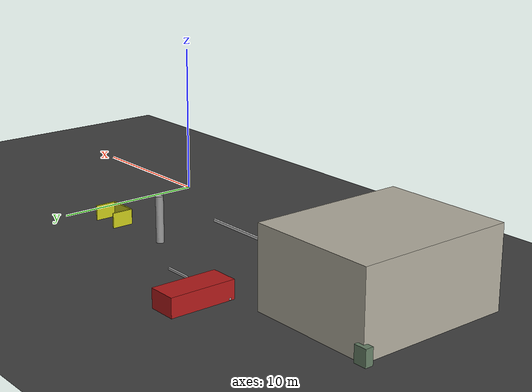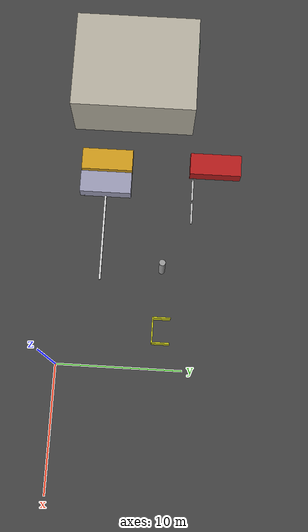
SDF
<sdf version="1.9">
 <world name="togo_parking_lot">
  <model name="ground_plane">
   <static>true</static>
   <link name="link">
    <collision name="collision">
     <geometry><plane><normal>0 0 1</normal><size>200 200</size></plane></geometry>
    </collision>
    <visual name="visual">
     <geometry><plane><normal>0 0 1</normal><size>200 200</size></plane></geometry>
     <material><ambient>0.2 0.2 0.2 1</ambient><diffuse>0.25 0.25 0.25 1</diffuse></material>
    </visual>
   </link>
  </model>
  <model name="building_side_west">
   <static>true</static>
   <pose>-24 5 2.5 0 0 0</pose>
   <link name="link">
    <collision name="collision"><geometry><box><size>8 10 5</size></box></geometry></collision>
    <visual name="visual">
     <geometry><box><size>8 10 5</size></box></geometry>
     <material><ambient>0.70 0.68 0.62 1</ambient><diffuse>0.70 0.68 0.62 1</diffuse></material>
    </visual>
   </link>
  </model>
  <model name="curb_row_b_west">
   <static>true</static>
   <pose>-12 3 0.08 0 0 0</pose>
   <link name="link">
    <collision name="collision"><geometry><box><size>10 0.15 0.16</size></box></geometry></collision>
    <visual name="visual">
     <geometry><box><size>10 0.15 0.16</size></box></geometry>
     <material><ambient>0.85 0.85 0.85 1</ambient><diffuse>0.85 0.85 0.85 1</diffuse></material>
    </visual>
   </link>
  </model>
  <model name="car_a1">
   <static>true</static>
   <pose>-17 12 0.4 0 0 0</pose>
   <link name="link">
    <collision name="collision"><geometry><box><size>1.8 4.2 1.5</size></box></geometry></collision>
    <visual name="visual">
     <geometry><box><size>1.8 4.2 1.5</size></box></geometry>
     <material><ambient>0.7 0.1 0.1 1</ambient><diffuse>0.7 0.1 0.1 1</diffuse></material>
    </visual>
   </link>
  </model>
  <model name="car_b1">
   <static>true</static>
   <pose>-17 3 0.4 0 0 0</pose>
   <link name="link">
    <collision name="collision"><geometry><box><size>1.8 4.2 1.4</size></box></geometry></collision>
    <visual name="visual">
     <geometry><box><size>1.8 4.2 1.4</size></box></geometry>
     <material><ambient>0.8 0.6 0.1 1</ambient><diffuse>0.8 0.6 0.1 1</diffuse></material>
    </visual>
   </link>
  </model>
  <model name="car_b2">
   <static>true</static>
   <pose>-15 3 0.4 0 0 0</pose>
   <link name="link">
    <collision name="collision"><geometry><box><size>1.8 4.2 1.5</size></box></geometry></collision>
    <visual name="visual">
     <geometry><box><size>1.8 4.2 1.5</size></box></geometry>
     <material><ambient>0.6 0.6 0.7 1</ambient><diffuse>0.6 0.6 0.7 1</diffuse></material>
    </visual>
   </link>
  </model>
  <model name="pillar_nw">
   <static>true</static>
   <pose>-8 8 1.5 0 0 0</pose>
   <link name="link">
    <collision name="collision">
     <geometry><cylinder><radius>0.25</radius><length>3.0</length></cylinder></geometry>
    </collision>
    <visual name="visual">
     <geometry><cylinder><radius>0.25</radius><length>3.0</length></cylinder></geometry>
     <material><ambient>0.6 0.6 0.6 1</ambient><diffuse>0.6 0.6 0.6 1</diffuse></material>
    </visual>
   </link>
  </model>
  <model name="corral_0_back">
   <static>true</static>
   <pose>-3 7.5 0.5 0 0 0</pose>
   <link name="link">
    <collision name="collision"><geometry><box><size>2.0 0.1 1.0</size></box></geometry></collision>
    <visual name="visual">
     <geometry><box><size>2.0 0.1 1.0</size></box></geometry>
     <material><ambient>0.8 0.8 0.1 1</ambient><diffuse>0.8 0.8 0.1 1</diffuse></material>
    </visual>
   </link>
  </model>
  <model name="corral_0_left">
   <static>true</static>
   <pose>-4.0 8.2 0.5 0 0 0</pose>
   <link name="link">
    <collision name="collision"><geometry><box><size>0.1 1.4 1.0</size></box></geometry></collision>
    <visual name="visual">
     <geometry><box><size>0.1 1.4 1.0</size></box></geometry>
     <material><ambient>0.8 0.8 0.1 1</ambient><diffuse>0.8 0.8 0.1 1</diffuse></material>
    </visual>
   </link>
  </model>
  <model name="corral_0_right">
   <static>true</static>
   <pose>-2.0 8.2 0.5 0 0 0</pose>
   <link name="link">
    <collision name="collision"><geometry><box><size>0.1 1.4 1.0</size></box></geometry></collision>
    <visual name="visual">
     <geometry><box><size>0.1 1.4 1.0</size></box></geometry>
     <material><ambient>0.8 0.8 0.1 1</ambient><diffuse>0.8 0.8 0.1 1</diffuse></material>
    </visual>
   </link>
  </model>
  <model name="utility_box_0">
   <static>true</static>
   <pose>-28 10 0.5 0 0 0</pose>
   <link name="link">
    <collision name="collision"><geometry><box><size>0.8 0.5 1.0</size></box></geometry></collision>
    <visual name="visual">
     <geometry><box><size>0.8 0.5 1.0</size></box></geometry>
     <material><ambient>0.4 0.5 0.4 1</ambient><diffuse>0.4 0.5 0.4 1</diffuse></material>
    </visual>
   </link>
  </model>
  <model name="wheelstop_a1">
   <static>true</static>
   <pose>-17 10.2 0.06 0 0 0</pose>
   <link name="link">
    <collision name="c"><geometry><box><size>1.8 0.15 0.12</size></box></geometry></collision>
    <visual name="v">
     <geometry><box><size>1.8 0.15 0.12</size></box></geometry>
     <material><ambient>0.75 0.75 0.75 1</ambient><diffuse>0.75 0.75 0.75 1</diffuse></material>
    </visual>
   </link>
  </model>
  <model name="wheelstop_a2">
   <static>true</static>
   <pose>-15 10.2 0.06 0 0 0</pose>
   <link name="link">
    <collision name="c"><geometry><box><size>1.8 0.15 0.12</size></box></geometry></collision>
    <visual name="v">
     <geometry><box><size>1.8 0.15 0.12</size></box></geometry>
     <material><ambient>0.75 0.75 0.75 1</ambient><diffuse>0.75 0.75 0.75 1</diffuse></material>
    </visual>
   </link>
  </model>
  <model name="wheelstop_a3">
   <static>true</static>
   <pose>-13 10.2 0.06 0 0 0</pose>
   <link name="link">
    <collision name="c"><geometry><box><size>1.8 0.15 0.12</size></box></geometry></collision>
    <visual name="v">
     <geometry><box><size>1.8 0.15 0.12</size></box></geometry>
     <material><ambient>0.75 0.75 0.75 1</ambient><diffuse>0.75 0.75 0.75 1</diffuse></material>
    </visual>
   </link>
  </model>
  <model name="wheelstop_b1">
   <static>true</static>
   <pose>-17 1.2 0.06 0 0 0</pose>
   <link name="link">
    <collision name="c"><geometry><box><size>1.8 0.15 0.12</size></box></geometry></collision>
    <visual name="v">
     <geometry><box><size>1.8 0.15 0.12</size></box></geometry>
     <material><ambient>0.75 0.75 0.75 1</ambient><diffuse>0.75 0.75 0.75 1</diffuse></material>
    </visual>
   </link>
  </model>
  <model name="wheelstop_b2">
   <static>true</static>
   <pose>-15 1.2 0.06 0 0 0</pose>
   <link name="link">
    <collision name="c"><geometry><box><size>1.8 0.15 0.12</size></box></geometry></collision>
    <visual name="v">
     <geometry><box><size>1.8 0.15 0.12</size></box></geometry>
     <material><ambient>0.75 0.75 0.75 1</ambient><diffuse>0.75 0.75 0.75 1</diffuse></material>
    </visual>
   </link>
  </model>
 </world>
</sdf>
